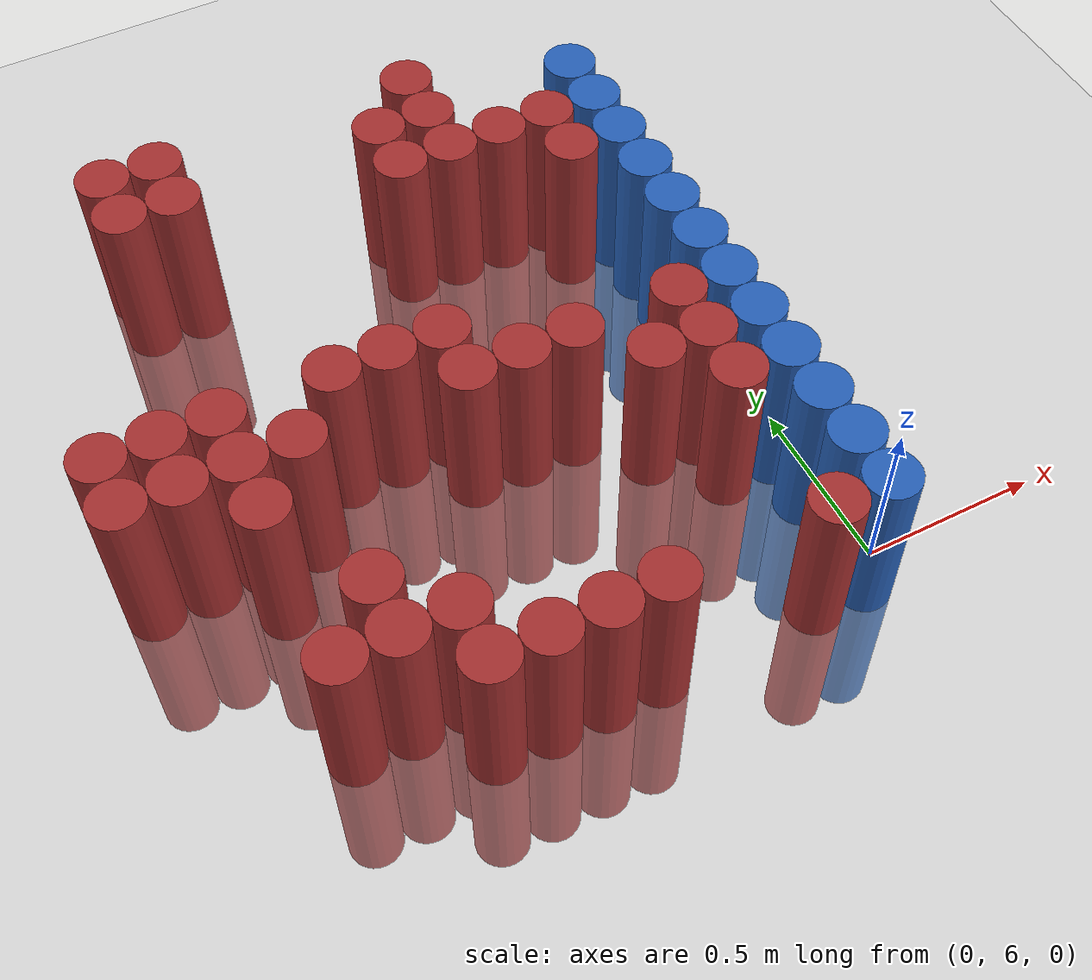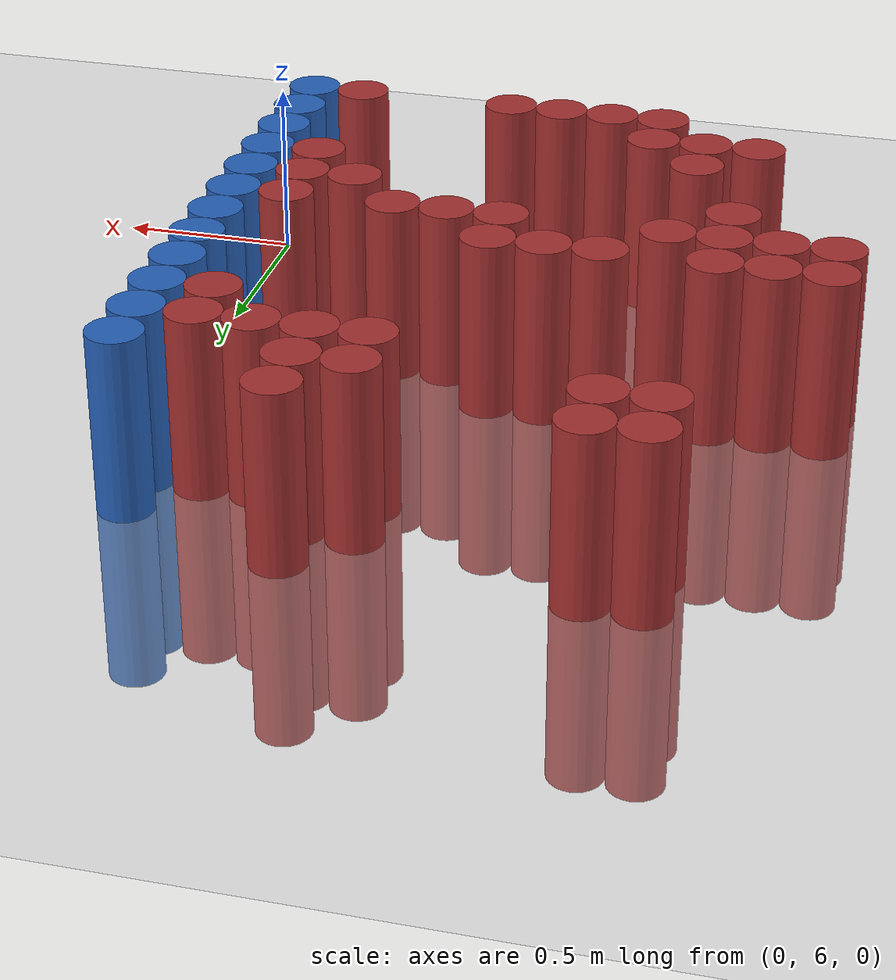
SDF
<sdf version="1.6">
 <world name="default">
  <model name="ground_plane">
   <static>1</static>
   <link name="link">
    <collision name="collision">
     <geometry><plane><normal>0 0 1</normal><size>100 100</size></plane></geometry>
     <surface><friction><ode><mu>100</mu><mu2>50</mu2></ode></friction></surface>
    </collision>
    <visual name="visual">
     <cast_shadows>0</cast_shadows>
     <geometry><plane><normal>0 0 1</normal><size>100 100</size></plane></geometry>
     <material>
      <script><uri>file://media/materials/scripts/gazebo.material</uri><name>Gazebo/Grey</name></script>
     </material>
    </visual>
   </link>
  </model>
  <model name="unit_cylinder_231">
   <static>1</static>
   <pose>-1.725000 6.675000 0.000000 0.000000 0.000000 0.000000</pose>
   <link name="link">
    <inertial>
     <mass>1</mass>
     <inertia><ixx>0.145833</ixx><ixy>0</ixy><ixz>0</ixz><iyy>0.145833</iyy><iyz>0</iyz><izz>0.125</izz></inertia>
    </inertial>
    <collision name="collision">
     <geometry><cylinder><radius>0.075000</radius><length>1</length></cylinder></geometry>
    </collision>
    <visual name="visual">
     <geometry><cylinder><radius>0.075000</radius><length>1</length></cylinder></geometry>
     <material>
      <ambient>0.648000 0.192000 0.192000 1</ambient>
      <diffuse>0.648000 0.192000 0.192000 1</diffuse>
     </material>
     <material>
      <script><name>Gazebo/Grey</name><uri>file://media/materials/scripts/gazebo.material</uri></script>
     </material>
    </visual>
   </link>
  </model>
  <model name="unit_cylinder_232">
   <static>1</static>
   <pose>-1.725000 6.825000 0.000000 0.000000 0.000000 0.000000</pose>
   <link name="link">
    <inertial>
     <mass>1</mass>
     <inertia><ixx>0.145833</ixx><ixy>0</ixy><ixz>0</ixz><iyy>0.145833</iyy><iyz>0</iyz><izz>0.125</izz></inertia>
    </inertial>
    <collision name="collision">
     <geometry><cylinder><radius>0.075000</radius><length>1</length></cylinder></geometry>
    </collision>
    <visual name="visual">
     <geometry><cylinder><radius>0.075000</radius><length>1</length></cylinder></geometry>
     <material>
      <ambient>0.648000 0.192000 0.192000 1</ambient>
      <diffuse>0.648000 0.192000 0.192000 1</diffuse>
     </material>
     <material>
      <script><name>Gazebo/Grey</name><uri>file://media/materials/scripts/gazebo.material</uri></script>
     </material>
    </visual>
   </link>
  </model>
  <model name="unit_cylinder_238">
   <static>1</static>
   <pose>-1.575000 6.675000 0.000000 0.000000 0.000000 0.000000</pose>
   <link name="link">
    <inertial>
     <mass>1</mass>
     <inertia><ixx>0.145833</ixx><ixy>0</ixy><ixz>0</ixz><iyy>0.145833</iyy><iyz>0</iyz><izz>0.125</izz></inertia>
    </inertial>
    <collision name="collision">
     <geometry><cylinder><radius>0.075000</radius><length>1</length></cylinder></geometry>
    </collision>
    <visual name="visual">
     <geometry><cylinder><radius>0.075000</radius><length>1</length></cylinder></geometry>
     <material>
      <ambient>0.648000 0.192000 0.192000 1</ambient>
      <diffuse>0.648000 0.192000 0.192000 1</diffuse>
     </material>
     <material>
      <script><name>Gazebo/Grey</name><uri>file://media/materials/scripts/gazebo.material</uri></script>
     </material>
    </visual>
   </link>
  </model>
  <model name="unit_cylinder_239">
   <static>1</static>
   <pose>-1.575000 6.825000 0.000000 0.000000 0.000000 0.000000</pose>
   <link name="link">
    <inertial>
     <mass>1</mass>
     <inertia><ixx>0.145833</ixx><ixy>0</ixy><ixz>0</ixz><iyy>0.145833</iyy><iyz>0</iyz><izz>0.125</izz></inertia>
    </inertial>
    <collision name="collision">
     <geometry><cylinder><radius>0.075000</radius><length>1</length></cylinder></geometry>
    </collision>
    <visual name="visual">
     <geometry><cylinder><radius>0.075000</radius><length>1</length></cylinder></geometry>
     <material>
      <ambient>0.648000 0.192000 0.192000 1</ambient>
      <diffuse>0.648000 0.192000 0.192000 1</diffuse>
     </material>
     <material>
      <script><name>Gazebo/Grey</name><uri>file://media/materials/scripts/gazebo.material</uri></script>
     </material>
    </visual>
   </link>
  </model>
  <model name="unit_cylinder_244">
   <static>1</static>
   <pose>-1.425000 6.075000 0.000000 0.000000 0.000000 0.000000</pose>
   <link name="link">
    <inertial>
     <mass>1</mass>
     <inertia><ixx>0.145833</ixx><ixy>0</ixy><ixz>0</ixz><iyy>0.145833</iyy><iyz>0</iyz><izz>0.125</izz></inertia>
    </inertial>
    <collision name="collision">
     <geometry><cylinder><radius>0.075000</radius><length>1</length></cylinder></geometry>
    </collision>
    <visual name="visual">
     <geometry><cylinder><radius>0.075000</radius><length>1</length></cylinder></geometry>
     <material>
      <ambient>0.648000 0.192000 0.192000 1</ambient>
      <diffuse>0.648000 0.192000 0.192000 1</diffuse>
     </material>
     <material>
      <script><name>Gazebo/Grey</name><uri>file://media/materials/scripts/gazebo.material</uri></script>
     </material>
    </visual>
   </link>
  </model>
  <model name="unit_cylinder_245">
   <static>1</static>
   <pose>-1.425000 6.525000 0.000000 0.000000 0.000000 0.000000</pose>
   <link name="link">
    <inertial>
     <mass>1</mass>
     <inertia><ixx>0.145833</ixx><ixy>0</ixy><ixz>0</ixz><iyy>0.145833</iyy><iyz>0</iyz><izz>0.125</izz></inertia>
    </inertial>
    <collision name="collision">
     <geometry><cylinder><radius>0.075000</radius><length>1</length></cylinder></geometry>
    </collision>
    <visual name="visual">
     <geometry><cylinder><radius>0.075000</radius><length>1</length></cylinder></geometry>
     <material>
      <ambient>0.648000 0.192000 0.192000 1</ambient>
      <diffuse>0.648000 0.192000 0.192000 1</diffuse>
     </material>
     <material>
      <script><name>Gazebo/Grey</name><uri>file://media/materials/scripts/gazebo.material</uri></script>
     </material>
    </visual>
   </link>
  </model>
  <model name="unit_cylinder_246">
   <static>1</static>
   <pose>-1.425000 6.675000 0.000000 0.000000 0.000000 0.000000</pose>
   <link name="link">
    <inertial>
     <mass>1</mass>
     <inertia><ixx>0.145833</ixx><ixy>0</ixy><ixz>0</ixz><iyy>0.145833</iyy><iyz>0</iyz><izz>0.125</izz></inertia>
    </inertial>
    <collision name="collision">
     <geometry><cylinder><radius>0.075000</radius><length>1</length></cylinder></geometry>
    </collision>
    <visual name="visual">
     <geometry><cylinder><radius>0.075000</radius><length>1</length></cylinder></geometry>
     <material>
      <ambient>0.648000 0.192000 0.192000 1</ambient>
      <diffuse>0.648000 0.192000 0.192000 1</diffuse>
     </material>
     <material>
      <script><name>Gazebo/Grey</name><uri>file://media/materials/scripts/gazebo.material</uri></script>
     </material>
    </visual>
   </link>
  </model>
  <model name="unit_cylinder_247">
   <static>1</static>
   <pose>-1.425000 6.825000 0.000000 0.000000 0.000000 0.000000</pose>
   <link name="link">
    <inertial>
     <mass>1</mass>
     <inertia><ixx>0.145833</ixx><ixy>0</ixy><ixz>0</ixz><iyy>0.145833</iyy><iyz>0</iyz><izz>0.125</izz></inertia>
    </inertial>
    <collision name="collision">
     <geometry><cylinder><radius>0.075000</radius><length>1</length></cylinder></geometry>
    </collision>
    <visual name="visual">
     <geometry><cylinder><radius>0.075000</radius><length>1</length></cylinder></geometry>
     <material>
      <ambient>0.648000 0.192000 0.192000 1</ambient>
      <diffuse>0.648000 0.192000 0.192000 1</diffuse>
     </material>
     <material>
      <script><name>Gazebo/Grey</name><uri>file://media/materials/scripts/gazebo.material</uri></script>
     </material>
    </visual>
   </link>
  </model>
  <model name="unit_cylinder_248">
   <static>1</static>
   <pose>-1.425000 7.575000 0.000000 0.000000 0.000000 0.000000</pose>
   <link name="link">
    <inertial>
     <mass>1</mass>
     <inertia><ixx>0.145833</ixx><ixy>0</ixy><ixz>0</ixz><iyy>0.145833</iyy><iyz>0</iyz><izz>0.125</izz></inertia>
    </inertial>
    <collision name="collision">
     <geometry><cylinder><radius>0.075000</radius><length>1</length></cylinder></geometry>
    </collision>
    <visual name="visual">
     <geometry><cylinder><radius>0.075000</radius><length>1</length></cylinder></geometry>
     <material>
      <ambient>0.648000 0.192000 0.192000 1</ambient>
      <diffuse>0.648000 0.192000 0.192000 1</diffuse>
     </material>
     <material>
      <script><name>Gazebo/Grey</name><uri>file://media/materials/scripts/gazebo.material</uri></script>
     </material>
    </visual>
   </link>
  </model>
  <model name="unit_cylinder_249">
   <static>1</static>
   <pose>-1.425000 7.725000 0.000000 0.000000 0.000000 0.000000</pose>
   <link name="link">
    <inertial>
     <mass>1</mass>
     <inertia><ixx>0.145833</ixx><ixy>0</ixy><ixz>0</ixz><iyy>0.145833</iyy><iyz>0</iyz><izz>0.125</izz></inertia>
    </inertial>
    <collision name="collision">
     <geometry><cylinder><radius>0.075000</radius><length>1</length></cylinder></geometry>
    </collision>
    <visual name="visual">
     <geometry><cylinder><radius>0.075000</radius><length>1</length></cylinder></geometry>
     <material>
      <ambient>0.648000 0.192000 0.192000 1</ambient>
      <diffuse>0.648000 0.192000 0.192000 1</diffuse>
     </material>
     <material>
      <script><name>Gazebo/Grey</name><uri>file://media/materials/scripts/gazebo.material</uri></script>
     </material>
    </visual>
   </link>
  </model>
  <model name="unit_cylinder_256">
   <static>1</static>
   <pose>-1.275000 6.075000 0.000000 0.000000 0.000000 0.000000</pose>
   <link name="link">
    <inertial>
     <mass>1</mass>
     <inertia><ixx>0.145833</ixx><ixy>0</ixy><ixz>0</ixz><iyy>0.145833</iyy><iyz>0</iyz><izz>0.125</izz></inertia>
    </inertial>
    <collision name="collision">
     <geometry><cylinder><radius>0.075000</radius><length>1</length></cylinder></geometry>
    </collision>
    <visual name="visual">
     <geometry><cylinder><radius>0.075000</radius><length>1</length></cylinder></geometry>
     <material>
      <ambient>0.648000 0.192000 0.192000 1</ambient>
      <diffuse>0.648000 0.192000 0.192000 1</diffuse>
     </material>
     <material>
      <script><name>Gazebo/Grey</name><uri>file://media/materials/scripts/gazebo.material</uri></script>
     </material>
    </visual>
   </link>
  </model>
  <model name="unit_cylinder_257">
   <static>1</static>
   <pose>-1.275000 6.225000 0.000000 0.000000 0.000000 0.000000</pose>
   <link name="link">
    <inertial>
     <mass>1</mass>
     <inertia><ixx>0.145833</ixx><ixy>0</ixy><ixz>0</ixz><iyy>0.145833</iyy><iyz>0</iyz><izz>0.125</izz></inertia>
    </inertial>
    <collision name="collision">
     <geometry><cylinder><radius>0.075000</radius><length>1</length></cylinder></geometry>
    </collision>
    <visual name="visual">
     <geometry><cylinder><radius>0.075000</radius><length>1</length></cylinder></geometry>
     <material>
      <ambient>0.648000 0.192000 0.192000 1</ambient>
      <diffuse>0.648000 0.192000 0.192000 1</diffuse>
     </material>
     <material>
      <script><name>Gazebo/Grey</name><uri>file://media/materials/scripts/gazebo.material</uri></script>
     </material>
    </visual>
   </link>
  </model>
  <model name="unit_cylinder_258">
   <static>1</static>
   <pose>-1.275000 6.675000 0.000000 0.000000 0.000000 0.000000</pose>
   <link name="link">
    <inertial>
     <mass>1</mass>
     <inertia><ixx>0.145833</ixx><ixy>0</ixy><ixz>0</ixz><iyy>0.145833</iyy><iyz>0</iyz><izz>0.125</izz></inertia>
    </inertial>
    <collision name="collision">
     <geometry><cylinder><radius>0.075000</radius><length>1</length></cylinder></geometry>
    </collision>
    <visual name="visual">
     <geometry><cylinder><radius>0.075000</radius><length>1</length></cylinder></geometry>
     <material>
      <ambient>0.648000 0.192000 0.192000 1</ambient>
      <diffuse>0.648000 0.192000 0.192000 1</diffuse>
     </material>
     <material>
      <script><name>Gazebo/Grey</name><uri>file://media/materials/scripts/gazebo.material</uri></script>
     </material>
    </visual>
   </link>
  </model>
  <model name="unit_cylinder_259">
   <static>1</static>
   <pose>-1.275000 7.575000 0.000000 0.000000 0.000000 0.000000</pose>
   <link name="link">
    <inertial>
     <mass>1</mass>
     <inertia><ixx>0.145833</ixx><ixy>0</ixy><ixz>0</ixz><iyy>0.145833</iyy><iyz>0</iyz><izz>0.125</izz></inertia>
    </inertial>
    <collision name="collision">
     <geometry><cylinder><radius>0.075000</radius><length>1</length></cylinder></geometry>
    </collision>
    <visual name="visual">
     <geometry><cylinder><radius>0.075000</radius><length>1</length></cylinder></geometry>
     <material>
      <ambient>0.648000 0.192000 0.192000 1</ambient>
      <diffuse>0.648000 0.192000 0.192000 1</diffuse>
     </material>
     <material>
      <script><name>Gazebo/Grey</name><uri>file://media/materials/scripts/gazebo.material</uri></script>
     </material>
    </visual>
   </link>
  </model>
  <model name="unit_cylinder_260">
   <static>1</static>
   <pose>-1.275000 7.725000 0.000000 0.000000 0.000000 0.000000</pose>
   <link name="link">
    <inertial>
     <mass>1</mass>
     <inertia><ixx>0.145833</ixx><ixy>0</ixy><ixz>0</ixz><iyy>0.145833</iyy><iyz>0</iyz><izz>0.125</izz></inertia>
    </inertial>
    <collision name="collision">
     <geometry><cylinder><radius>0.075000</radius><length>1</length></cylinder></geometry>
    </collision>
    <visual name="visual">
     <geometry><cylinder><radius>0.075000</radius><length>1</length></cylinder></geometry>
     <material>
      <ambient>0.648000 0.192000 0.192000 1</ambient>
      <diffuse>0.648000 0.192000 0.192000 1</diffuse>
     </material>
     <material>
      <script><name>Gazebo/Grey</name><uri>file://media/materials/scripts/gazebo.material</uri></script>
     </material>
    </visual>
   </link>
  </model>
  <model name="unit_cylinder_268">
   <static>1</static>
   <pose>-1.125000 5.925000 0.000000 0.000000 0.000000 0.000000</pose>
   <link name="link">
    <inertial>
     <mass>1</mass>
     <inertia><ixx>0.145833</ixx><ixy>0</ixy><ixz>0</ixz><iyy>0.145833</iyy><iyz>0</iyz><izz>0.125</izz></inertia>
    </inertial>
    <collision name="collision">
     <geometry><cylinder><radius>0.075000</radius><length>1</length></cylinder></geometry>
    </collision>
    <visual name="visual">
     <geometry><cylinder><radius>0.075000</radius><length>1</length></cylinder></geometry>
     <material>
      <ambient>0.648000 0.192000 0.192000 1</ambient>
      <diffuse>0.648000 0.192000 0.192000 1</diffuse>
     </material>
     <material>
      <script><name>Gazebo/Grey</name><uri>file://media/materials/scripts/gazebo.material</uri></script>
     </material>
    </visual>
   </link>
  </model>
  <model name="unit_cylinder_269">
   <static>1</static>
   <pose>-1.125000 6.075000 0.000000 0.000000 0.000000 0.000000</pose>
   <link name="link">
    <inertial>
     <mass>1</mass>
     <inertia><ixx>0.145833</ixx><ixy>0</ixy><ixz>0</ixz><iyy>0.145833</iyy><iyz>0</iyz><izz>0.125</izz></inertia>
    </inertial>
    <collision name="collision">
     <geometry><cylinder><radius>0.075000</radius><length>1</length></cylinder></geometry>
    </collision>
    <visual name="visual">
     <geometry><cylinder><radius>0.075000</radius><length>1</length></cylinder></geometry>
     <material>
      <ambient>0.648000 0.192000 0.192000 1</ambient>
      <diffuse>0.648000 0.192000 0.192000 1</diffuse>
     </material>
     <material>
      <script><name>Gazebo/Grey</name><uri>file://media/materials/scripts/gazebo.material</uri></script>
     </material>
    </visual>
   </link>
  </model>
  <model name="unit_cylinder_270">
   <static>1</static>
   <pose>-1.125000 6.825000 0.000000 0.000000 0.000000 0.000000</pose>
   <link name="link">
    <inertial>
     <mass>1</mass>
     <inertia><ixx>0.145833</ixx><ixy>0</ixy><ixz>0</ixz><iyy>0.145833</iyy><iyz>0</iyz><izz>0.125</izz></inertia>
    </inertial>
    <collision name="collision">
     <geometry><cylinder><radius>0.075000</radius><length>1</length></cylinder></geometry>
    </collision>
    <visual name="visual">
     <geometry><cylinder><radius>0.075000</radius><length>1</length></cylinder></geometry>
     <material>
      <ambient>0.648000 0.192000 0.192000 1</ambient>
      <diffuse>0.648000 0.192000 0.192000 1</diffuse>
     </material>
     <material>
      <script><name>Gazebo/Grey</name><uri>file://media/materials/scripts/gazebo.material</uri></script>
     </material>
    </visual>
   </link>
  </model>
  <model name="unit_cylinder_279">
   <static>1</static>
   <pose>-0.975000 5.925000 0.000000 0.000000 0.000000 0.000000</pose>
   <link name="link">
    <inertial>
     <mass>1</mass>
     <inertia><ixx>0.145833</ixx><ixy>0</ixy><ixz>0</ixz><iyy>0.145833</iyy><iyz>0</iyz><izz>0.125</izz></inertia>
    </inertial>
    <collision name="collision">
     <geometry><cylinder><radius>0.075000</radius><length>1</length></cylinder></geometry>
    </collision>
    <visual name="visual">
     <geometry><cylinder><radius>0.075000</radius><length>1</length></cylinder></geometry>
     <material>
      <ambient>0.648000 0.192000 0.192000 1</ambient>
      <diffuse>0.648000 0.192000 0.192000 1</diffuse>
     </material>
     <material>
      <script><name>Gazebo/Grey</name><uri>file://media/materials/scripts/gazebo.material</uri></script>
     </material>
    </visual>
   </link>
  </model>
  <model name="unit_cylinder_280">
   <static>1</static>
   <pose>-0.975000 6.825000 0.000000 0.000000 0.000000 0.000000</pose>
   <link name="link">
    <inertial>
     <mass>1</mass>
     <inertia><ixx>0.145833</ixx><ixy>0</ixy><ixz>0</ixz><iyy>0.145833</iyy><iyz>0</iyz><izz>0.125</izz></inertia>
    </inertial>
    <collision name="collision">
     <geometry><cylinder><radius>0.075000</radius><length>1</length></cylinder></geometry>
    </collision>
    <visual name="visual">
     <geometry><cylinder><radius>0.075000</radius><length>1</length></cylinder></geometry>
     <material>
      <ambient>0.648000 0.192000 0.192000 1</ambient>
      <diffuse>0.648000 0.192000 0.192000 1</diffuse>
     </material>
     <material>
      <script><name>Gazebo/Grey</name><uri>file://media/materials/scripts/gazebo.material</uri></script>
     </material>
    </visual>
   </link>
  </model>
  <model name="unit_cylinder_283">
   <static>1</static>
   <pose>-0.825000 5.925000 0.000000 0.000000 0.000000 0.000000</pose>
   <link name="link">
    <inertial>
     <mass>1</mass>
     <inertia><ixx>0.145833</ixx><ixy>0</ixy><ixz>0</ixz><iyy>0.145833</iyy><iyz>0</iyz><izz>0.125</izz></inertia>
    </inertial>
    <collision name="collision">
     <geometry><cylinder><radius>0.075000</radius><length>1</length></cylinder></geometry>
    </collision>
    <visual name="visual">
     <geometry><cylinder><radius>0.075000</radius><length>1</length></cylinder></geometry>
     <material>
      <ambient>0.648000 0.192000 0.192000 1</ambient>
      <diffuse>0.648000 0.192000 0.192000 1</diffuse>
     </material>
     <material>
      <script><name>Gazebo/Grey</name><uri>file://media/materials/scripts/gazebo.material</uri></script>
     </material>
    </visual>
   </link>
  </model>
  <model name="unit_cylinder_284">
   <static>1</static>
   <pose>-0.825000 6.675000 0.000000 0.000000 0.000000 0.000000</pose>
   <link name="link">
    <inertial>
     <mass>1</mass>
     <inertia><ixx>0.145833</ixx><ixy>0</ixy><ixz>0</ixz><iyy>0.145833</iyy><iyz>0</iyz><izz>0.125</izz></inertia>
    </inertial>
    <collision name="collision">
     <geometry><cylinder><radius>0.075000</radius><length>1</length></cylinder></geometry>
    </collision>
    <visual name="visual">
     <geometry><cylinder><radius>0.075000</radius><length>1</length></cylinder></geometry>
     <material>
      <ambient>0.648000 0.192000 0.192000 1</ambient>
      <diffuse>0.648000 0.192000 0.192000 1</diffuse>
     </material>
     <material>
      <script><name>Gazebo/Grey</name><uri>file://media/materials/scripts/gazebo.material</uri></script>
     </material>
    </visual>
   </link>
  </model>
  <model name="unit_cylinder_285">
   <static>1</static>
   <pose>-0.825000 6.825000 0.000000 0.000000 0.000000 0.000000</pose>
   <link name="link">
    <inertial>
     <mass>1</mass>
     <inertia><ixx>0.145833</ixx><ixy>0</ixy><ixz>0</ixz><iyy>0.145833</iyy><iyz>0</iyz><izz>0.125</izz></inertia>
    </inertial>
    <collision name="collision">
     <geometry><cylinder><radius>0.075000</radius><length>1</length></cylinder></geometry>
    </collision>
    <visual name="visual">
     <geometry><cylinder><radius>0.075000</radius><length>1</length></cylinder></geometry>
     <material>
      <ambient>0.648000 0.192000 0.192000 1</ambient>
      <diffuse>0.648000 0.192000 0.192000 1</diffuse>
     </material>
     <material>
      <script><name>Gazebo/Grey</name><uri>file://media/materials/scripts/gazebo.material</uri></script>
     </material>
    </visual>
   </link>
  </model>
  <model name="unit_cylinder_289">
   <static>1</static>
   <pose>-0.675000 5.925000 0.000000 0.000000 0.000000 0.000000</pose>
   <link name="link">
    <inertial>
     <mass>1</mass>
     <inertia><ixx>0.145833</ixx><ixy>0</ixy><ixz>0</ixz><iyy>0.145833</iyy><iyz>0</iyz><izz>0.125</izz></inertia>
    </inertial>
    <collision name="collision">
     <geometry><cylinder><radius>0.075000</radius><length>1</length></cylinder></geometry>
    </collision>
    <visual name="visual">
     <geometry><cylinder><radius>0.075000</radius><length>1</length></cylinder></geometry>
     <material>
      <ambient>0.648000 0.192000 0.192000 1</ambient>
      <diffuse>0.648000 0.192000 0.192000 1</diffuse>
     </material>
     <material>
      <script><name>Gazebo/Grey</name><uri>file://media/materials/scripts/gazebo.material</uri></script>
     </material>
    </visual>
   </link>
  </model>
  <model name="unit_cylinder_290">
   <static>1</static>
   <pose>-0.675000 6.675000 0.000000 0.000000 0.000000 0.000000</pose>
   <link name="link">
    <inertial>
     <mass>1</mass>
     <inertia><ixx>0.145833</ixx><ixy>0</ixy><ixz>0</ixz><iyy>0.145833</iyy><iyz>0</iyz><izz>0.125</izz></inertia>
    </inertial>
    <collision name="collision">
     <geometry><cylinder><radius>0.075000</radius><length>1</length></cylinder></geometry>
    </collision>
    <visual name="visual">
     <geometry><cylinder><radius>0.075000</radius><length>1</length></cylinder></geometry>
     <material>
      <ambient>0.648000 0.192000 0.192000 1</ambient>
      <diffuse>0.648000 0.192000 0.192000 1</diffuse>
     </material>
     <material>
      <script><name>Gazebo/Grey</name><uri>file://media/materials/scripts/gazebo.material</uri></script>
     </material>
    </visual>
   </link>
  </model>
  <model name="unit_cylinder_291">
   <static>1</static>
   <pose>-0.675000 7.425000 0.000000 0.000000 0.000000 0.000000</pose>
   <link name="link">
    <inertial>
     <mass>1</mass>
     <inertia><ixx>0.145833</ixx><ixy>0</ixy><ixz>0</ixz><iyy>0.145833</iyy><iyz>0</iyz><izz>0.125</izz></inertia>
    </inertial>
    <collision name="collision">
     <geometry><cylinder><radius>0.075000</radius><length>1</length></cylinder></geometry>
    </collision>
    <visual name="visual">
     <geometry><cylinder><radius>0.075000</radius><length>1</length></cylinder></geometry>
     <material>
      <ambient>0.648000 0.192000 0.192000 1</ambient>
      <diffuse>0.648000 0.192000 0.192000 1</diffuse>
     </material>
     <material>
      <script><name>Gazebo/Grey</name><uri>file://media/materials/scripts/gazebo.material</uri></script>
     </material>
    </visual>
   </link>
  </model>
  <model name="unit_cylinder_292">
   <static>1</static>
   <pose>-0.675000 7.575000 0.000000 0.000000 0.000000 0.000000</pose>
   <link name="link">
    <inertial>
     <mass>1</mass>
     <inertia><ixx>0.145833</ixx><ixy>0</ixy><ixz>0</ixz><iyy>0.145833</iyy><iyz>0</iyz><izz>0.125</izz></inertia>
    </inertial>
    <collision name="collision">
     <geometry><cylinder><radius>0.075000</radius><length>1</length></cylinder></geometry>
    </collision>
    <visual name="visual">
     <geometry><cylinder><radius>0.075000</radius><length>1</length></cylinder></geometry>
     <material>
      <ambient>0.648000 0.192000 0.192000 1</ambient>
      <diffuse>0.648000 0.192000 0.192000 1</diffuse>
     </material>
     <material>
      <script><name>Gazebo/Grey</name><uri>file://media/materials/scripts/gazebo.material</uri></script>
     </material>
    </visual>
   </link>
  </model>
  <model name="unit_cylinder_296">
   <static>1</static>
   <pose>-0.525000 6.675000 0.000000 0.000000 0.000000 0.000000</pose>
   <link name="link">
    <inertial>
     <mass>1</mass>
     <inertia><ixx>0.145833</ixx><ixy>0</ixy><ixz>0</ixz><iyy>0.145833</iyy><iyz>0</iyz><izz>0.125</izz></inertia>
    </inertial>
    <collision name="collision">
     <geometry><cylinder><radius>0.075000</radius><length>1</length></cylinder></geometry>
    </collision>
    <visual name="visual">
     <geometry><cylinder><radius>0.075000</radius><length>1</length></cylinder></geometry>
     <material>
      <ambient>0.648000 0.192000 0.192000 1</ambient>
      <diffuse>0.648000 0.192000 0.192000 1</diffuse>
     </material>
     <material>
      <script><name>Gazebo/Grey</name><uri>file://media/materials/scripts/gazebo.material</uri></script>
     </material>
    </visual>
   </link>
  </model>
  <model name="unit_cylinder_297">
   <static>1</static>
   <pose>-0.525000 7.425000 0.000000 0.000000 0.000000 0.000000</pose>
   <link name="link">
    <inertial>
     <mass>1</mass>
     <inertia><ixx>0.145833</ixx><ixy>0</ixy><ixz>0</ixz><iyy>0.145833</iyy><iyz>0</iyz><izz>0.125</izz></inertia>
    </inertial>
    <collision name="collision">
     <geometry><cylinder><radius>0.075000</radius><length>1</length></cylinder></geometry>
    </collision>
    <visual name="visual">
     <geometry><cylinder><radius>0.075000</radius><length>1</length></cylinder></geometry>
     <material>
      <ambient>0.648000 0.192000 0.192000 1</ambient>
      <diffuse>0.648000 0.192000 0.192000 1</diffuse>
     </material>
     <material>
      <script><name>Gazebo/Grey</name><uri>file://media/materials/scripts/gazebo.material</uri></script>
     </material>
    </visual>
   </link>
  </model>
  <model name="unit_cylinder_298">
   <static>1</static>
   <pose>-0.525000 7.575000 0.000000 0.000000 0.000000 0.000000</pose>
   <link name="link">
    <inertial>
     <mass>1</mass>
     <inertia><ixx>0.145833</ixx><ixy>0</ixy><ixz>0</ixz><iyy>0.145833</iyy><iyz>0</iyz><izz>0.125</izz></inertia>
    </inertial>
    <collision name="collision">
     <geometry><cylinder><radius>0.075000</radius><length>1</length></cylinder></geometry>
    </collision>
    <visual name="visual">
     <geometry><cylinder><radius>0.075000</radius><length>1</length></cylinder></geometry>
     <material>
      <ambient>0.648000 0.192000 0.192000 1</ambient>
      <diffuse>0.648000 0.192000 0.192000 1</diffuse>
     </material>
     <material>
      <script><name>Gazebo/Grey</name><uri>file://media/materials/scripts/gazebo.material</uri></script>
     </material>
    </visual>
   </link>
  </model>
  <model name="unit_cylinder_299">
   <static>1</static>
   <pose>-0.525000 7.725000 0.000000 0.000000 0.000000 0.000000</pose>
   <link name="link">
    <inertial>
     <mass>1</mass>
     <inertia><ixx>0.145833</ixx><ixy>0</ixy><ixz>0</ixz><iyy>0.145833</iyy><iyz>0</iyz><izz>0.125</izz></inertia>
    </inertial>
    <collision name="collision">
     <geometry><cylinder><radius>0.075000</radius><length>1</length></cylinder></geometry>
    </collision>
    <visual name="visual">
     <geometry><cylinder><radius>0.075000</radius><length>1</length></cylinder></geometry>
     <material>
      <ambient>0.648000 0.192000 0.192000 1</ambient>
      <diffuse>0.648000 0.192000 0.192000 1</diffuse>
     </material>
     <material>
      <script><name>Gazebo/Grey</name><uri>file://media/materials/scripts/gazebo.material</uri></script>
     </material>
    </visual>
   </link>
  </model>
  <model name="unit_cylinder_303">
   <static>1</static>
   <pose>-0.375000 6.525000 0.000000 0.000000 0.000000 0.000000</pose>
   <link name="link">
    <inertial>
     <mass>1</mass>
     <inertia><ixx>0.145833</ixx><ixy>0</ixy><ixz>0</ixz><iyy>0.145833</iyy><iyz>0</iyz><izz>0.125</izz></inertia>
    </inertial>
    <collision name="collision">
     <geometry><cylinder><radius>0.075000</radius><length>1</length></cylinder></geometry>
    </collision>
    <visual name="visual">
     <geometry><cylinder><radius>0.075000</radius><length>1</length></cylinder></geometry>
     <material>
      <ambient>0.648000 0.192000 0.192000 1</ambient>
      <diffuse>0.648000 0.192000 0.192000 1</diffuse>
     </material>
     <material>
      <script><name>Gazebo/Grey</name><uri>file://media/materials/scripts/gazebo.material</uri></script>
     </material>
    </visual>
   </link>
  </model>
  <model name="unit_cylinder_304">
   <static>1</static>
   <pose>-0.375000 7.425000 0.000000 0.000000 0.000000 0.000000</pose>
   <link name="link">
    <inertial>
     <mass>1</mass>
     <inertia><ixx>0.145833</ixx><ixy>0</ixy><ixz>0</ixz><iyy>0.145833</iyy><iyz>0</iyz><izz>0.125</izz></inertia>
    </inertial>
    <collision name="collision">
     <geometry><cylinder><radius>0.075000</radius><length>1</length></cylinder></geometry>
    </collision>
    <visual name="visual">
     <geometry><cylinder><radius>0.075000</radius><length>1</length></cylinder></geometry>
     <material>
      <ambient>0.648000 0.192000 0.192000 1</ambient>
      <diffuse>0.648000 0.192000 0.192000 1</diffuse>
     </material>
     <material>
      <script><name>Gazebo/Grey</name><uri>file://media/materials/scripts/gazebo.material</uri></script>
     </material>
    </visual>
   </link>
  </model>
  <model name="unit_cylinder_311">
   <static>1</static>
   <pose>-0.225000 5.925000 0.000000 0.000000 0.000000 0.000000</pose>
   <link name="link">
    <inertial>
     <mass>1</mass>
     <inertia><ixx>0.145833</ixx><ixy>0</ixy><ixz>0</ixz><iyy>0.145833</iyy><iyz>0</iyz><izz>0.125</izz></inertia>
    </inertial>
    <collision name="collision">
     <geometry><cylinder><radius>0.075000</radius><length>1</length></cylinder></geometry>
    </collision>
    <visual name="visual">
     <geometry><cylinder><radius>0.075000</radius><length>1</length></cylinder></geometry>
     <material>
      <ambient>0.648000 0.192000 0.192000 1</ambient>
      <diffuse>0.648000 0.192000 0.192000 1</diffuse>
     </material>
     <material>
      <script><name>Gazebo/Grey</name><uri>file://media/materials/scripts/gazebo.material</uri></script>
     </material>
    </visual>
   </link>
  </model>
  <model name="unit_cylinder_312">
   <static>1</static>
   <pose>-0.225000 6.375000 0.000000 0.000000 0.000000 0.000000</pose>
   <link name="link">
    <inertial>
     <mass>1</mass>
     <inertia><ixx>0.145833</ixx><ixy>0</ixy><ixz>0</ixz><iyy>0.145833</iyy><iyz>0</iyz><izz>0.125</izz></inertia>
    </inertial>
    <collision name="collision">
     <geometry><cylinder><radius>0.075000</radius><length>1</length></cylinder></geometry>
    </collision>
    <visual name="visual">
     <geometry><cylinder><radius>0.075000</radius><length>1</length></cylinder></geometry>
     <material>
      <ambient>0.648000 0.192000 0.192000 1</ambient>
      <diffuse>0.648000 0.192000 0.192000 1</diffuse>
     </material>
     <material>
      <script><name>Gazebo/Grey</name><uri>file://media/materials/scripts/gazebo.material</uri></script>
     </material>
    </visual>
   </link>
  </model>
  <model name="unit_cylinder_313">
   <static>1</static>
   <pose>-0.225000 6.525000 0.000000 0.000000 0.000000 0.000000</pose>
   <link name="link">
    <inertial>
     <mass>1</mass>
     <inertia><ixx>0.145833</ixx><ixy>0</ixy><ixz>0</ixz><iyy>0.145833</iyy><iyz>0</iyz><izz>0.125</izz></inertia>
    </inertial>
    <collision name="collision">
     <geometry><cylinder><radius>0.075000</radius><length>1</length></cylinder></geometry>
    </collision>
    <visual name="visual">
     <geometry><cylinder><radius>0.075000</radius><length>1</length></cylinder></geometry>
     <material>
      <ambient>0.648000 0.192000 0.192000 1</ambient>
      <diffuse>0.648000 0.192000 0.192000 1</diffuse>
     </material>
     <material>
      <script><name>Gazebo/Grey</name><uri>file://media/materials/scripts/gazebo.material</uri></script>
     </material>
    </visual>
   </link>
  </model>
  <model name="unit_cylinder_314">
   <static>1</static>
   <pose>-0.225000 6.675000 0.000000 0.000000 0.000000 0.000000</pose>
   <link name="link">
    <inertial>
     <mass>1</mass>
     <inertia><ixx>0.145833</ixx><ixy>0</ixy><ixz>0</ixz><iyy>0.145833</iyy><iyz>0</iyz><izz>0.125</izz></inertia>
    </inertial>
    <collision name="collision">
     <geometry><cylinder><radius>0.075000</radius><length>1</length></cylinder></geometry>
    </collision>
    <visual name="visual">
     <geometry><cylinder><radius>0.075000</radius><length>1</length></cylinder></geometry>
     <material>
      <ambient>0.648000 0.192000 0.192000 1</ambient>
      <diffuse>0.648000 0.192000 0.192000 1</diffuse>
     </material>
     <material>
      <script><name>Gazebo/Grey</name><uri>file://media/materials/scripts/gazebo.material</uri></script>
     </material>
    </visual>
   </link>
  </model>
  <model name="unit_cylinder_315">
   <static>1</static>
   <pose>-0.225000 7.275000 0.000000 0.000000 0.000000 0.000000</pose>
   <link name="link">
    <inertial>
     <mass>1</mass>
     <inertia><ixx>0.145833</ixx><ixy>0</ixy><ixz>0</ixz><iyy>0.145833</iyy><iyz>0</iyz><izz>0.125</izz></inertia>
    </inertial>
    <collision name="collision">
     <geometry><cylinder><radius>0.075000</radius><length>1</length></cylinder></geometry>
    </collision>
    <visual name="visual">
     <geometry><cylinder><radius>0.075000</radius><length>1</length></cylinder></geometry>
     <material>
      <ambient>0.648000 0.192000 0.192000 1</ambient>
      <diffuse>0.648000 0.192000 0.192000 1</diffuse>
     </material>
     <material>
      <script><name>Gazebo/Grey</name><uri>file://media/materials/scripts/gazebo.material</uri></script>
     </material>
    </visual>
   </link>
  </model>
  <model name="unit_cylinder_316">
   <static>1</static>
   <pose>-0.225000 7.425000 0.000000 0.000000 0.000000 0.000000</pose>
   <link name="link">
    <inertial>
     <mass>1</mass>
     <inertia><ixx>0.145833</ixx><ixy>0</ixy><ixz>0</ixz><iyy>0.145833</iyy><iyz>0</iyz><izz>0.125</izz></inertia>
    </inertial>
    <collision name="collision">
     <geometry><cylinder><radius>0.075000</radius><length>1</length></cylinder></geometry>
    </collision>
    <visual name="visual">
     <geometry><cylinder><radius>0.075000</radius><length>1</length></cylinder></geometry>
     <material>
      <ambient>0.648000 0.192000 0.192000 1</ambient>
      <diffuse>0.648000 0.192000 0.192000 1</diffuse>
     </material>
     <material>
      <script><name>Gazebo/Grey</name><uri>file://media/materials/scripts/gazebo.material</uri></script>
     </material>
    </visual>
   </link>
  </model>
  <model name="unit_cylinder_329">
   <static>1</static>
   <pose>-0.075000 5.925000 0.000000 0.000000 0.000000 0.000000</pose>
   <link name="link">
    <inertial>
     <mass>1</mass>
     <inertia><ixx>0.145833</ixx><ixy>0</ixy><ixz>0</ixz><iyy>0.145833</iyy><iyz>0</iyz><izz>0.125</izz></inertia>
    </inertial>
    <collision name="collision">
     <geometry><cylinder><radius>0.075000</radius><length>1</length></cylinder></geometry>
    </collision>
    <visual name="visual">
     <geometry><cylinder><radius>0.075000</radius><length>1</length></cylinder></geometry>
     <material>
      <ambient>0.152000 0.379000 0.720000 1</ambient>
      <diffuse>0.152000 0.379000 0.720000 1</diffuse>
     </material>
     <material>
      <script><name>Gazebo/Grey</name><uri>file://media/materials/scripts/gazebo.material</uri></script>
     </material>
    </visual>
   </link>
  </model>
  <model name="unit_cylinder_330">
   <static>1</static>
   <pose>-0.075000 6.075000 0.000000 0.000000 0.000000 0.000000</pose>
   <link name="link">
    <inertial>
     <mass>1</mass>
     <inertia><ixx>0.145833</ixx><ixy>0</ixy><ixz>0</ixz><iyy>0.145833</iyy><iyz>0</iyz><izz>0.125</izz></inertia>
    </inertial>
    <collision name="collision">
     <geometry><cylinder><radius>0.075000</radius><length>1</length></cylinder></geometry>
    </collision>
    <visual name="visual">
     <geometry><cylinder><radius>0.075000</radius><length>1</length></cylinder></geometry>
     <material>
      <ambient>0.152000 0.379000 0.720000 1</ambient>
      <diffuse>0.152000 0.379000 0.720000 1</diffuse>
     </material>
     <material>
      <script><name>Gazebo/Grey</name><uri>file://media/materials/scripts/gazebo.material</uri></script>
     </material>
    </visual>
   </link>
  </model>
  <model name="unit_cylinder_331">
   <static>1</static>
   <pose>-0.075000 6.225000 0.000000 0.000000 0.000000 0.000000</pose>
   <link name="link">
    <inertial>
     <mass>1</mass>
     <inertia><ixx>0.145833</ixx><ixy>0</ixy><ixz>0</ixz><iyy>0.145833</iyy><iyz>0</iyz><izz>0.125</izz></inertia>
    </inertial>
    <collision name="collision">
     <geometry><cylinder><radius>0.075000</radius><length>1</length></cylinder></geometry>
    </collision>
    <visual name="visual">
     <geometry><cylinder><radius>0.075000</radius><length>1</length></cylinder></geometry>
     <material>
      <ambient>0.152000 0.379000 0.720000 1</ambient>
      <diffuse>0.152000 0.379000 0.720000 1</diffuse>
     </material>
     <material>
      <script><name>Gazebo/Grey</name><uri>file://media/materials/scripts/gazebo.material</uri></script>
     </material>
    </visual>
   </link>
  </model>
  <model name="unit_cylinder_332">
   <static>1</static>
   <pose>-0.075000 6.375000 0.000000 0.000000 0.000000 0.000000</pose>
   <link name="link">
    <inertial>
     <mass>1</mass>
     <inertia><ixx>0.145833</ixx><ixy>0</ixy><ixz>0</ixz><iyy>0.145833</iyy><iyz>0</iyz><izz>0.125</izz></inertia>
    </inertial>
    <collision name="collision">
     <geometry><cylinder><radius>0.075000</radius><length>1</length></cylinder></geometry>
    </collision>
    <visual name="visual">
     <geometry><cylinder><radius>0.075000</radius><length>1</length></cylinder></geometry>
     <material>
      <ambient>0.152000 0.379000 0.720000 1</ambient>
      <diffuse>0.152000 0.379000 0.720000 1</diffuse>
     </material>
     <material>
      <script><name>Gazebo/Grey</name><uri>file://media/materials/scripts/gazebo.material</uri></script>
     </material>
    </visual>
   </link>
  </model>
  <model name="unit_cylinder_333">
   <static>1</static>
   <pose>-0.075000 6.525000 0.000000 0.000000 0.000000 0.000000</pose>
   <link name="link">
    <inertial>
     <mass>1</mass>
     <inertia><ixx>0.145833</ixx><ixy>0</ixy><ixz>0</ixz><iyy>0.145833</iyy><iyz>0</iyz><izz>0.125</izz></inertia>
    </inertial>
    <collision name="collision">
     <geometry><cylinder><radius>0.075000</radius><length>1</length></cylinder></geometry>
    </collision>
    <visual name="visual">
     <geometry><cylinder><radius>0.075000</radius><length>1</length></cylinder></geometry>
     <material>
      <ambient>0.152000 0.379000 0.720000 1</ambient>
      <diffuse>0.152000 0.379000 0.720000 1</diffuse>
     </material>
     <material>
      <script><name>Gazebo/Grey</name><uri>file://media/materials/scripts/gazebo.material</uri></script>
     </material>
    </visual>
   </link>
  </model>
  <model name="unit_cylinder_334">
   <static>1</static>
   <pose>-0.075000 6.675000 0.000000 0.000000 0.000000 0.000000</pose>
   <link name="link">
    <inertial>
     <mass>1</mass>
     <inertia><ixx>0.145833</ixx><ixy>0</ixy><ixz>0</ixz><iyy>0.145833</iyy><iyz>0</iyz><izz>0.125</izz></inertia>
    </inertial>
    <collision name="collision">
     <geometry><cylinder><radius>0.075000</radius><length>1</length></cylinder></geometry>
    </collision>
    <visual name="visual">
     <geometry><cylinder><radius>0.075000</radius><length>1</length></cylinder></geometry>
     <material>
      <ambient>0.152000 0.379000 0.720000 1</ambient>
      <diffuse>0.152000 0.379000 0.720000 1</diffuse>
     </material>
     <material>
      <script><name>Gazebo/Grey</name><uri>file://media/materials/scripts/gazebo.material</uri></script>
     </material>
    </visual>
   </link>
  </model>
  <model name="unit_cylinder_335">
   <static>1</static>
   <pose>-0.075000 6.825000 0.000000 0.000000 0.000000 0.000000</pose>
   <link name="link">
    <inertial>
     <mass>1</mass>
     <inertia><ixx>0.145833</ixx><ixy>0</ixy><ixz>0</ixz><iyy>0.145833</iyy><iyz>0</iyz><izz>0.125</izz></inertia>
    </inertial>
    <collision name="collision">
     <geometry><cylinder><radius>0.075000</radius><length>1</length></cylinder></geometry>
    </collision>
    <visual name="visual">
     <geometry><cylinder><radius>0.075000</radius><length>1</length></cylinder></geometry>
     <material>
      <ambient>0.152000 0.379000 0.720000 1</ambient>
      <diffuse>0.152000 0.379000 0.720000 1</diffuse>
     </material>
     <material>
      <script><name>Gazebo/Grey</name><uri>file://media/materials/scripts/gazebo.material</uri></script>
     </material>
    </visual>
   </link>
  </model>
  <model name="unit_cylinder_336">
   <static>1</static>
   <pose>-0.075000 6.975000 0.000000 0.000000 0.000000 0.000000</pose>
   <link name="link">
    <inertial>
     <mass>1</mass>
     <inertia><ixx>0.145833</ixx><ixy>0</ixy><ixz>0</ixz><iyy>0.145833</iyy><iyz>0</iyz><izz>0.125</izz></inertia>
    </inertial>
    <collision name="collision">
     <geometry><cylinder><radius>0.075000</radius><length>1</length></cylinder></geometry>
    </collision>
    <visual name="visual">
     <geometry><cylinder><radius>0.075000</radius><length>1</length></cylinder></geometry>
     <material>
      <ambient>0.152000 0.379000 0.720000 1</ambient>
      <diffuse>0.152000 0.379000 0.720000 1</diffuse>
     </material>
     <material>
      <script><name>Gazebo/Grey</name><uri>file://media/materials/scripts/gazebo.material</uri></script>
     </material>
    </visual>
   </link>
  </model>
  <model name="unit_cylinder_337">
   <static>1</static>
   <pose>-0.075000 7.125000 0.000000 0.000000 0.000000 0.000000</pose>
   <link name="link">
    <inertial>
     <mass>1</mass>
     <inertia><ixx>0.145833</ixx><ixy>0</ixy><ixz>0</ixz><iyy>0.145833</iyy><iyz>0</iyz><izz>0.125</izz></inertia>
    </inertial>
    <collision name="collision">
     <geometry><cylinder><radius>0.075000</radius><length>1</length></cylinder></geometry>
    </collision>
    <visual name="visual">
     <geometry><cylinder><radius>0.075000</radius><length>1</length></cylinder></geometry>
     <material>
      <ambient>0.152000 0.379000 0.720000 1</ambient>
      <diffuse>0.152000 0.379000 0.720000 1</diffuse>
     </material>
     <material>
      <script><name>Gazebo/Grey</name><uri>file://media/materials/scripts/gazebo.material</uri></script>
     </material>
    </visual>
   </link>
  </model>
  <model name="unit_cylinder_338">
   <static>1</static>
   <pose>-0.075000 7.275000 0.000000 0.000000 0.000000 0.000000</pose>
   <link name="link">
    <inertial>
     <mass>1</mass>
     <inertia><ixx>0.145833</ixx><ixy>0</ixy><ixz>0</ixz><iyy>0.145833</iyy><iyz>0</iyz><izz>0.125</izz></inertia>
    </inertial>
    <collision name="collision">
     <geometry><cylinder><radius>0.075000</radius><length>1</length></cylinder></geometry>
    </collision>
    <visual name="visual">
     <geometry><cylinder><radius>0.075000</radius><length>1</length></cylinder></geometry>
     <material>
      <ambient>0.152000 0.379000 0.720000 1</ambient>
      <diffuse>0.152000 0.379000 0.720000 1</diffuse>
     </material>
     <material>
      <script><name>Gazebo/Grey</name><uri>file://media/materials/scripts/gazebo.material</uri></script>
     </material>
    </visual>
   </link>
  </model>
  <model name="unit_cylinder_339">
   <static>1</static>
   <pose>-0.075000 7.425000 0.000000 0.000000 0.000000 0.000000</pose>
   <link name="link">
    <inertial>
     <mass>1</mass>
     <inertia><ixx>0.145833</ixx><ixy>0</ixy><ixz>0</ixz><iyy>0.145833</iyy><iyz>0</iyz><izz>0.125</izz></inertia>
    </inertial>
    <collision name="collision">
     <geometry><cylinder><radius>0.075000</radius><length>1</length></cylinder></geometry>
    </collision>
    <visual name="visual">
     <geometry><cylinder><radius>0.075000</radius><length>1</length></cylinder></geometry>
     <material>
      <ambient>0.152000 0.379000 0.720000 1</ambient>
      <diffuse>0.152000 0.379000 0.720000 1</diffuse>
     </material>
     <material>
      <script><name>Gazebo/Grey</name><uri>file://media/materials/scripts/gazebo.material</uri></script>
     </material>
    </visual>
   </link>
  </model>
  <model name="unit_cylinder_340">
   <static>1</static>
   <pose>-0.075000 7.575000 0.000000 0.000000 0.000000 0.000000</pose>
   <link name="link">
    <inertial>
     <mass>1</mass>
     <inertia><ixx>0.145833</ixx><ixy>0</ixy><ixz>0</ixz><iyy>0.145833</iyy><iyz>0</iyz><izz>0.125</izz></inertia>
    </inertial>
    <collision name="collision">
     <geometry><cylinder><radius>0.075000</radius><length>1</length></cylinder></geometry>
    </collision>
    <visual name="visual">
     <geometry><cylinder><radius>0.075000</radius><length>1</length></cylinder></geometry>
     <material>
      <ambient>0.152000 0.379000 0.720000 1</ambient>
      <diffuse>0.152000 0.379000 0.720000 1</diffuse>
     </material>
     <material>
      <script><name>Gazebo/Grey</name><uri>file://media/materials/scripts/gazebo.material</uri></script>
     </material>
    </visual>
   </link>
  </model>
 </world>
</sdf>
